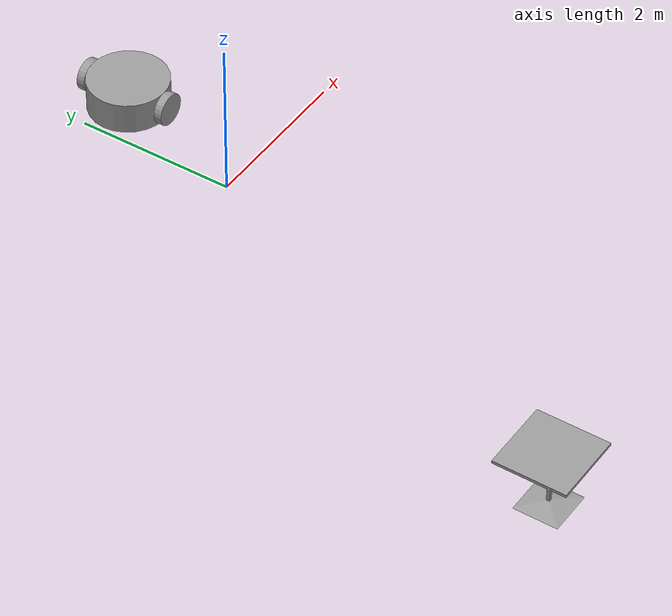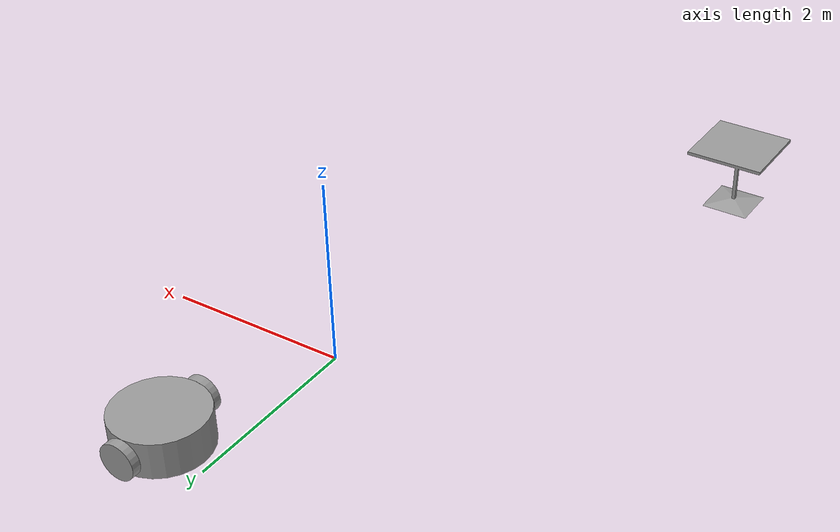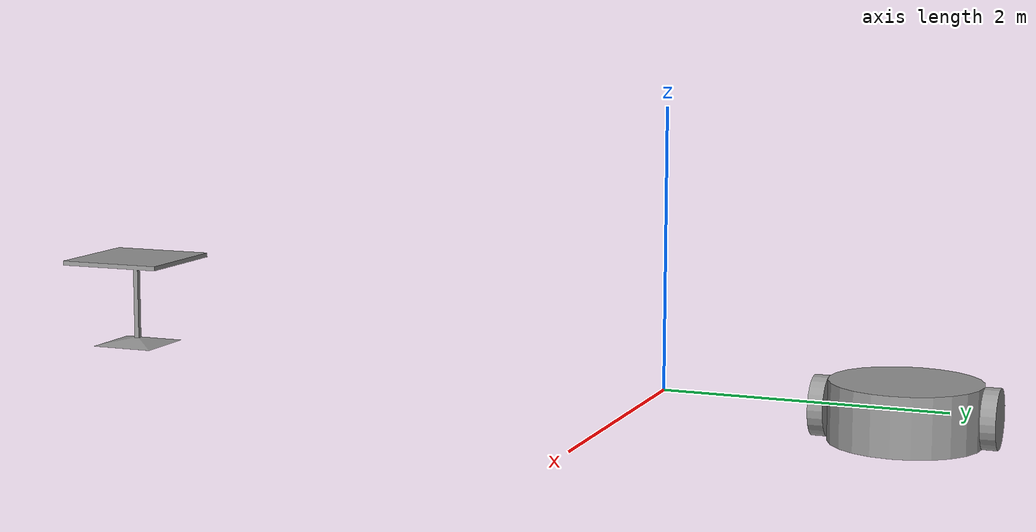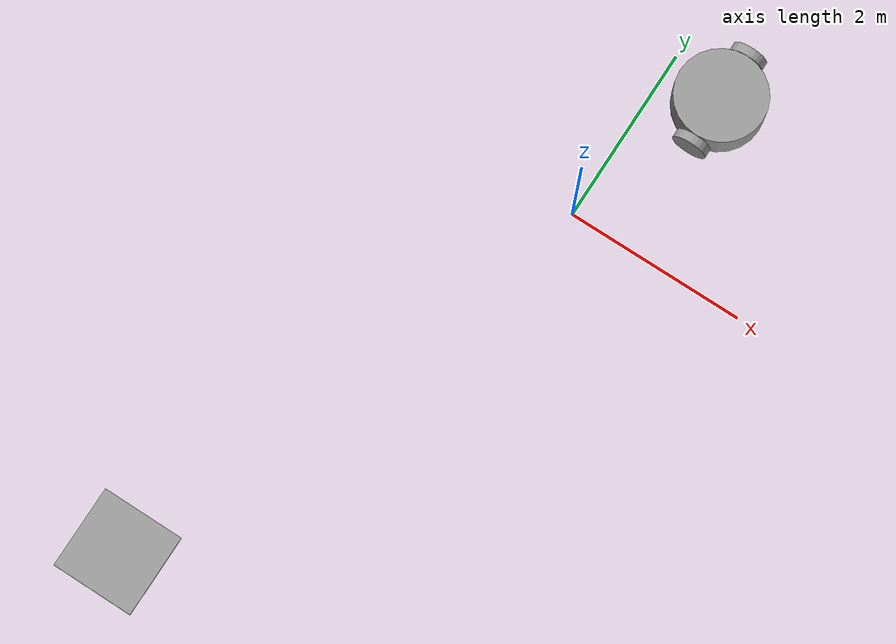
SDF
<?xml version='1.0'?>
<sdf version='1.6'>
  <model name='office'>
    <link name='link_4'>
      <inertial>
        <mass>1</mass>
        <inertia>
          <ixx>0.145833</ixx>
          <ixy>0</ixy>
          <ixz>0</ixz>
          <iyy>0.145833</iyy>
          <iyz>0</iyz>
          <izz>0.125</izz>
        </inertia>
        <pose frame=''>0 0 0 0 -0 0</pose>
      </inertial>
      <pose frame=''>0.63442 1.81949 0.125 0 -0 0</pose>
      <gravity>1</gravity>
      <self_collide>0</self_collide>
      <kinematic>0</kinematic>
      <enable_wind>0</enable_wind>
      <visual name='visual'>
        <pose frame=''>0 0 0 0 -0 0</pose>
        <geometry>
          <cylinder>
            <radius>0.5</radius>
            <length>0.4</length>
          </cylinder>
        </geometry>
        <material>
          <lighting>1</lighting>
          <script>
            <uri>file://media/materials/scripts/gazebo.material</uri>
            <name>Gazebo/Grey</name>
          </script>
          <shader type='vertex'>
            <normal_map>__default__</normal_map>
          </shader>
          <ambient>0.3 0.3 0.3 1</ambient>
          <diffuse>0.7 0.7 0.7 1</diffuse>
          <specular>0.01 0.01 0.01 1</specular>
          <emissive>0 0 0 1</emissive>
        </material>
        <transparency>0</transparency>
        <cast_shadows>1</cast_shadows>
      </visual>
      <collision name='collision'>
        <laser_retro>0</laser_retro>
        <max_contacts>10</max_contacts>
        <pose frame=''>0 0 0 0 -0 0</pose>
        <geometry>
          <cylinder>
            <radius>0.5</radius>
            <length>0.4</length>
          </cylinder>
        </geometry>
        <surface>
          <friction>
            <ode>
              <mu>1</mu>
              <mu2>1</mu2>
              <fdir1>0 0 0</fdir1>
              <slip1>0</slip1>
              <slip2>0</slip2>
            </ode>
            <torsional>
              <coefficient>1</coefficient>
              <patch_radius>0</patch_radius>
              <surface_radius>0</surface_radius>
              <use_patch_radius>1</use_patch_radius>
              <ode>
                <slip>0</slip>
              </ode>
            </torsional>
          </friction>
          <bounce>
            <restitution_coefficient>0</restitution_coefficient>
            <threshold>1e+06</threshold>
          </bounce>
          <contact>
            <collide_without_contact>0</collide_without_contact>
            <collide_without_contact_bitmask>1</collide_without_contact_bitmask>
            <collide_bitmask>1</collide_bitmask>
            <ode>
              <soft_cfm>0</soft_cfm>
              <soft_erp>0.2</soft_erp>
              <kp>1e+13</kp>
              <kd>1</kd>
              <max_vel>0.01</max_vel>
              <min_depth>0</min_depth>
            </ode>
            <bullet>
              <split_impulse>1</split_impulse>
              <split_impulse_penetration_threshold>-0.01</split_impulse_penetration_threshold>
              <soft_cfm>0</soft_cfm>
              <soft_erp>0.2</soft_erp>
              <kp>1e+13</kp>
              <kd>1</kd>
            </bullet>
          </contact>
        </surface>
      </collision>
    </link>
    <link name='link_6'>
      <inertial>
        <mass>1</mass>
        <inertia>
          <ixx>0.145833</ixx>
          <ixy>0</ixy>
          <ixz>0</ixz>
          <iyy>0.145833</iyy>
          <iyz>0</iyz>
          <izz>0.125</izz>
        </inertia>
        <pose frame=''>0 0 0 0 -0 0</pose>
      </inertial>
      <pose frame=''>0.63442 1.26947 0.125 1.5707 -0 0</pose>
      <gravity>1</gravity>
      <self_collide>0</self_collide>
      <kinematic>0</kinematic>
      <enable_wind>0</enable_wind>
      <visual name='visual'>
        <pose frame=''>0 0 0 0 -0 0</pose>
        <geometry>
          <cylinder>
            <radius>0.2</radius>
            <length>0.1</length>
          </cylinder>
        </geometry>
        <material>
          <lighting>1</lighting>
          <script>
            <uri>file://media/materials/scripts/gazebo.material</uri>
            <name>Gazebo/Grey</name>
          </script>
          <shader type='vertex'>
            <normal_map>__default__</normal_map>
          </shader>
          <ambient>0.3 0.3 0.3 1</ambient>
          <diffuse>0.7 0.7 0.7 1</diffuse>
          <specular>0.01 0.01 0.01 1</specular>
          <emissive>0 0 0 1</emissive>
        </material>
        <transparency>0</transparency>
        <cast_shadows>1</cast_shadows>
      </visual>
      <collision name='collision'>
        <laser_retro>0</laser_retro>
        <max_contacts>10</max_contacts>
        <pose frame=''>0 0 0 0 -0 0</pose>
        <geometry>
          <cylinder>
            <radius>0.2</radius>
            <length>0.1</length>
          </cylinder>
        </geometry>
        <surface>
          <friction>
            <ode>
              <mu>1</mu>
              <mu2>1</mu2>
              <fdir1>0 0 0</fdir1>
              <slip1>0</slip1>
              <slip2>0</slip2>
            </ode>
            <torsional>
              <coefficient>1</coefficient>
              <patch_radius>0</patch_radius>
              <surface_radius>0</surface_radius>
              <use_patch_radius>1</use_patch_radius>
              <ode>
                <slip>0</slip>
              </ode>
            </torsional>
          </friction>
          <bounce>
            <restitution_coefficient>0</restitution_coefficient>
            <threshold>1e+06</threshold>
          </bounce>
          <contact>
            <collide_without_contact>0</collide_without_contact>
            <collide_without_contact_bitmask>1</collide_without_contact_bitmask>
            <collide_bitmask>1</collide_bitmask>
            <ode>
              <soft_cfm>0</soft_cfm>
              <soft_erp>0.2</soft_erp>
              <kp>1e+13</kp>
              <kd>1</kd>
              <max_vel>0.01</max_vel>
              <min_depth>0</min_depth>
            </ode>
            <bullet>
              <split_impulse>1</split_impulse>
              <split_impulse_penetration_threshold>-0.01</split_impulse_penetration_threshold>
              <soft_cfm>0</soft_cfm>
              <soft_erp>0.2</soft_erp>
              <kp>1e+13</kp>
              <kd>1</kd>
            </bullet>
          </contact>
        </surface>
      </collision>
    </link>
    <link name='link_6_clone'>
      <inertial>
        <mass>1</mass>
        <inertia>
          <ixx>0.145833</ixx>
          <ixy>0</ixy>
          <ixz>0</ixz>
          <iyy>0.145833</iyy>
          <iyz>0</iyz>
          <izz>0.125</izz>
        </inertia>
        <pose frame=''>0 0 0 0 -0 0</pose>
      </inertial>
      <pose frame=''>0.63442 2.36951 0.125 1.5707 -0 0</pose>
      <gravity>1</gravity>
      <self_collide>0</self_collide>
      <kinematic>0</kinematic>
      <enable_wind>0</enable_wind>
      <visual name='visual'>
        <pose frame=''>0 0 0 0 -0 0</pose>
        <geometry>
          <cylinder>
            <radius>0.2</radius>
            <length>0.1</length>
          </cylinder>
        </geometry>
        <material>
          <lighting>1</lighting>
          <script>
            <uri>file://media/materials/scripts/gazebo.material</uri>
            <name>Gazebo/Grey</name>
          </script>
          <shader type='vertex'>
            <normal_map>__default__</normal_map>
          </shader>
          <ambient>0.3 0.3 0.3 1</ambient>
          <diffuse>0.7 0.7 0.7 1</diffuse>
          <specular>0.01 0.01 0.01 1</specular>
          <emissive>0 0 0 1</emissive>
        </material>
        <transparency>0</transparency>
        <cast_shadows>1</cast_shadows>
      </visual>
      <collision name='collision'>
        <laser_retro>0</laser_retro>
        <max_contacts>10</max_contacts>
        <pose frame=''>0 0 0 0 -0 0</pose>
        <geometry>
          <cylinder>
            <radius>0.2</radius>
            <length>0.1</length>
          </cylinder>
        </geometry>
        <surface>
          <friction>
            <ode>
              <mu>1</mu>
              <mu2>1</mu2>
              <fdir1>0 0 0</fdir1>
              <slip1>0</slip1>
              <slip2>0</slip2>
            </ode>
            <torsional>
              <coefficient>1</coefficient>
              <patch_radius>0</patch_radius>
              <surface_radius>0</surface_radius>
              <use_patch_radius>1</use_patch_radius>
              <ode>
                <slip>0</slip>
              </ode>
            </torsional>
          </friction>
          <bounce>
            <restitution_coefficient>0</restitution_coefficient>
            <threshold>1e+06</threshold>
          </bounce>
          <contact>
            <collide_without_contact>0</collide_without_contact>
            <collide_without_contact_bitmask>1</collide_without_contact_bitmask>
            <collide_bitmask>1</collide_bitmask>
            <ode>
              <soft_cfm>0</soft_cfm>
              <soft_erp>0.2</soft_erp>
              <kp>1e+13</kp>
              <kd>1</kd>
              <max_vel>0.01</max_vel>
              <min_depth>0</min_depth>
            </ode>
            <bullet>
              <split_impulse>1</split_impulse>
              <split_impulse_penetration_threshold>-0.01</split_impulse_penetration_threshold>
              <soft_cfm>0</soft_cfm>
              <soft_erp>0.2</soft_erp>
              <kp>1e+13</kp>
              <kd>1</kd>
            </bullet>
          </contact>
        </surface>
      </collision>
    </link>
    <link name='link_7'>
      <inertial>
        <mass>1</mass>
        <inertia>
          <ixx>0.166667</ixx>
          <ixy>0</ixy>
          <ixz>0</ixz>
          <iyy>0.166667</iyy>
          <iyz>0</iyz>
          <izz>0.166667</izz>
        </inertia>
      </inertial>
      <pose frame=''>-1.90326 -5.45846 -0.375 0 -0 0</pose>
      <visual name='visual'>
        <pose frame=''>0 0 0 0 -0 0</pose>
        <geometry>
          <mesh>
            <uri>/home/doublepoints/udacity/gazebo_models/cafe_table/meshes/cafe_table.dae</uri>
            <scale>1 1 1</scale>
          </mesh>
        </geometry>
        <material>
          <lighting>1</lighting>
          <script>
            <uri>file://media/materials/scripts/gazebo.material</uri>
            <name>Gazebo/Grey</name>
          </script>
        </material>
        <transparency>0</transparency>
        <cast_shadows>1</cast_shadows>
      </visual>
      <collision name='collision'>
        <laser_retro>0</laser_retro>
        <max_contacts>10</max_contacts>
        <pose frame=''>0 0 0 0 -0 0</pose>
        <geometry>
          <mesh>
            <uri>/home/doublepoints/udacity/gazebo_models/cafe_table/meshes/cafe_table.dae</uri>
            <scale>1 1 1</scale>
          </mesh>
        </geometry>
        <surface>
          <friction>
            <ode>
              <mu>1</mu>
              <mu2>1</mu2>
              <fdir1>0 0 0</fdir1>
              <slip1>0</slip1>
              <slip2>0</slip2>
            </ode>
            <torsional>
              <coefficient>1</coefficient>
              <patch_radius>0</patch_radius>
              <surface_radius>0</surface_radius>
              <use_patch_radius>1</use_patch_radius>
              <ode>
                <slip>0</slip>
              </ode>
            </torsional>
          </friction>
          <bounce>
            <restitution_coefficient>0</restitution_coefficient>
            <threshold>1e+06</threshold>
          </bounce>
          <contact>
            <collide_without_contact>0</collide_without_contact>
            <collide_without_contact_bitmask>1</collide_without_contact_bitmask>
            <collide_bitmask>1</collide_bitmask>
            <ode>
              <soft_cfm>0</soft_cfm>
              <soft_erp>0.2</soft_erp>
              <kp>1e+13</kp>
              <kd>1</kd>
              <max_vel>0.01</max_vel>
              <min_depth>0</min_depth>
            </ode>
            <bullet>
              <split_impulse>1</split_impulse>
              <split_impulse_penetration_threshold>-0.01</split_impulse_penetration_threshold>
              <soft_cfm>0</soft_cfm>
              <soft_erp>0.2</soft_erp>
              <kp>1e+13</kp>
              <kd>1</kd>
            </bullet>
          </contact>
        </surface>
      </collision>
    </link>
    <joint name='link_4_JOINT_2' type='revolute'>
      <parent>link_4</parent>
      <child>link_6_clone</child>
      <pose frame=''>0 0 0 0 -0 0</pose>
      <axis>
        <xyz>0 0 1</xyz>
        <use_parent_model_frame>0</use_parent_model_frame>
        <limit>
          <lower>-1.79769e+308</lower>
          <upper>1.79769e+308</upper>
          <effort>-1</effort>
          <velocity>-1</velocity>
        </limit>
        <dynamics>
          <spring_reference>0</spring_reference>
          <spring_stiffness>0</spring_stiffness>
          <damping>0</damping>
        </dynamics>
      </axis>
      <physics>
        <ode>
          <limit>
            <cfm>0</cfm>
            <erp>0.2</erp>
          </limit>
          <suspension>
            <cfm>0</cfm>
            <erp>0.2</erp>
          </suspension>
        </ode>
      </physics>
    </joint>
    <static>0</static>
    <allow_auto_disable>1</allow_auto_disable>
  </model>
</sdf>
